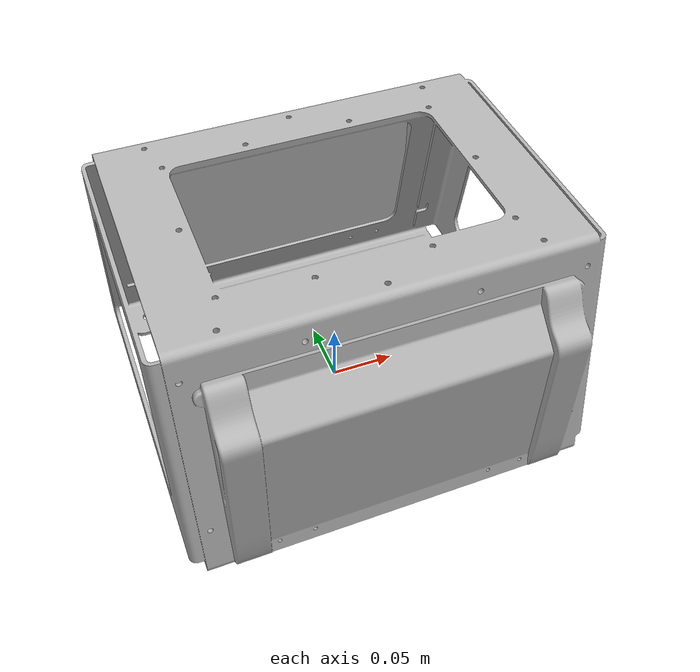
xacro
<?xml version="1.0"?>
<robot name="ugv_devkit_v1" xmlns:xacro="http://www.ros.org/wiki/xacro">

  <material name="silver">
    <color rgba="0.700 0.700 0.700 1.000"/>
  </material>

  <link name="ugv_devkit_v1_base_link"></link>

  <link name="ugv_devkit_v1_chassis_link">
    <inertial>
      <origin xyz="-0.002286220197256035 -0.0009315804339498247 0.0879648388296149" rpy="0 0 0" />
      <mass value="10.733504865991039" />
      <inertia ixx="0.167434" iyy="0.148852" izz="0.213349" ixy="0.000228" iyz="-0.000808"
        ixz="0.000348" />
    </inertial>
    <visual>
      <origin xyz="0 0 0" rpy="0 0 0" />
      <geometry>
        <mesh filename="package://ugv_devkit_v1_bringup/meshes/ugv_devkit_v1_chassis_link.stl"
          scale="0.001 0.001 0.001" />
      </geometry>
      <material name="silver" />
    </visual>
    <collision>
      <origin xyz="0 0 0" rpy="0 0 0" />
      <geometry>
        <mesh filename="package://ugv_devkit_v1_bringup/meshes/ugv_devkit_v1_chassis_link.stl"
          scale="0.001 0.001 0.001" />
      </geometry>
    </collision>
  </link>

  <joint name="chassis_joint" type="fixed">
    <origin xyz="0 0 0" rpy="0 0 0" />
    <parent link="ugv_devkit_v1_base_link" />
    <child link="ugv_devkit_v1_chassis_link" />
  </joint>

  <link name="top_sensor_kit_link">
  </link>

  <joint name="top_joint" type="fixed">
    <origin xyz="0.0 0.0 0.193" rpy="0 0 0" />
    <parent link="ugv_devkit_v1_base_link" />
    <child link="top_sensor_kit_link" />
  </joint>
</robot>
